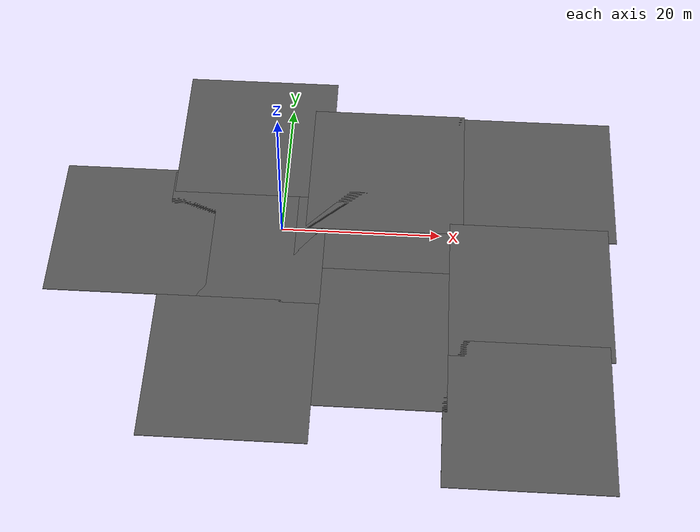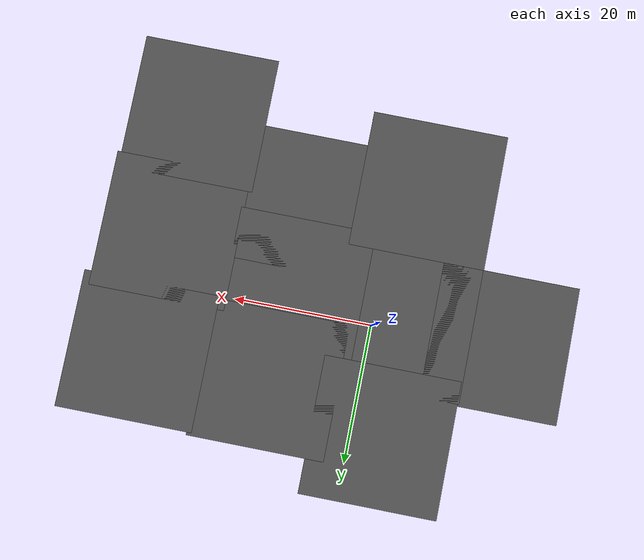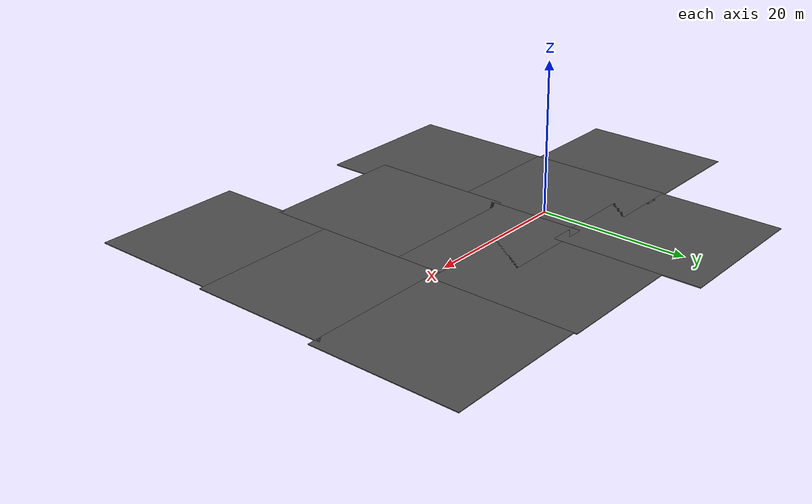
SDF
<sdf version="1.6">
 <world name="default">
  <light name="sun" type="directional">
   <pose>0 0 10 0 -0 0</pose>
   <diffuse>0.8 0.8 0.8 1</diffuse>
   <specular>0.2 0.2 0.2 1</specular>
   <attenuation>
    <range>1000</range>
    <constant>0.9</constant>
    <linear>0.01</linear>
    <quadratic>0.001</quadratic>
   </attenuation>
   <direction>-0.5 0.1 -0.9</direction>
  </light>
  <gravity>0 0 -9.8</gravity>
  <magnetic_field>6e-06 2.3e-05 -4.2e-05</magnetic_field>
  <atmosphere type="adiabatic"/>
  <physics name="default_physics" default="0" type="ode">
   <max_step_size>0.001</max_step_size>
   <real_time_factor>1</real_time_factor>
   <real_time_update_rate>1000</real_time_update_rate>
  </physics>
  <scene><ambient>0.4 0.4 0.4 1</ambient><background>0.7 0.7 0.7 1</background><shadows>1</shadows></scene>
  <spherical_coordinates>
   <surface_model>EARTH_WGS84</surface_model>
   <latitude_deg>0</latitude_deg>
   <longitude_deg>0</longitude_deg>
   <elevation>0</elevation>
   <heading_deg>0</heading_deg>
  </spherical_coordinates>
  <model name="asphalt_plane">
   <static>1</static>
   <link name="link">
    <collision name="collision"><geometry><box><size>20 20 0.1</size></box></geometry></collision>
    <visual name="visual">
     <cast_shadows>0</cast_shadows>
     <geometry><box><size>20 20 0.1</size></box></geometry>
     <material>
      <script>
       <uri>model://asphalt_plane/materials/scripts</uri>
       <uri>model://asphalt_plane/materials/textures</uri>
       <name>vrc/asphalt</name>
      </script>
     </material>
    </visual>
   </link>
   <pose>-4.64285 -21.04 0 0 -0 0</pose>
  </model>
  <model name="asphalt_plane_clone">
   <static>1</static>
   <link name="link">
    <collision name="collision"><geometry><box><size>20 20 0.1</size></box></geometry></collision>
    <visual name="visual">
     <cast_shadows>0</cast_shadows>
     <geometry><box><size>20 20 0.1</size></box></geometry>
     <material>
      <script>
       <uri>model://asphalt_plane/materials/scripts</uri>
       <uri>model://asphalt_plane/materials/textures</uri>
       <name>vrc/asphalt</name>
      </script>
     </material>
    </visual>
   </link>
   <pose>-4.56138 -1.36583 0 0 -0 0</pose>
  </model>
  <model name="asphalt_plane_clone_0">
   <static>1</static>
   <link name="link">
    <collision name="collision"><geometry><box><size>20 20 0.1</size></box></geometry></collision>
    <visual name="visual">
     <cast_shadows>0</cast_shadows>
     <geometry><box><size>20 20 0.1</size></box></geometry>
     <material>
      <script>
       <uri>model://asphalt_plane/materials/scripts</uri>
       <uri>model://asphalt_plane/materials/textures</uri>
       <name>vrc/asphalt</name>
      </script>
     </material>
    </visual>
   </link>
   <pose>-4.35704 15.385 0 0 -0 0</pose>
  </model>
  <model name="asphalt_plane_clone_1">
   <static>1</static>
   <link name="link">
    <collision name="collision"><geometry><box><size>20 20 0.1</size></box></geometry></collision>
    <visual name="visual">
     <cast_shadows>0</cast_shadows>
     <geometry><box><size>20 20 0.1</size></box></geometry>
     <material>
      <script>
       <uri>model://asphalt_plane/materials/scripts</uri>
       <uri>model://asphalt_plane/materials/textures</uri>
       <name>vrc/asphalt</name>
      </script>
     </material>
    </visual>
   </link>
   <pose>12.919 10.3967 0 0 -0 0</pose>
  </model>
  <model name="asphalt_plane_clone_2">
   <static>1</static>
   <link name="link">
    <collision name="collision"><geometry><box><size>20 20 0.1</size></box></geometry></collision>
    <visual name="visual">
     <cast_shadows>0</cast_shadows>
     <geometry><box><size>20 20 0.1</size></box></geometry>
     <material>
      <script>
       <uri>model://asphalt_plane/materials/scripts</uri>
       <uri>model://asphalt_plane/materials/textures</uri>
       <name>vrc/asphalt</name>
      </script>
     </material>
    </visual>
   </link>
   <pose>11.7465 -3.39792 0 0 -0 0</pose>
  </model>
  <model name="asphalt_plane_clone_3">
   <static>1</static>
   <link name="link">
    <collision name="collision"><geometry><box><size>20 20 0.1</size></box></geometry></collision>
    <visual name="visual">
     <cast_shadows>0</cast_shadows>
     <geometry><box><size>20 20 0.1</size></box></geometry>
     <material>
      <script>
       <uri>model://asphalt_plane/materials/scripts</uri>
       <uri>model://asphalt_plane/materials/textures</uri>
       <name>vrc/asphalt</name>
      </script>
     </material>
    </visual>
   </link>
   <pose>11.2537 -15.8872 0 0 -0 0</pose>
  </model>
  <model name="asphalt_plane_clone_clone">
   <static>1</static>
   <link name="link">
    <collision name="collision"><geometry><box><size>20 20 0.1</size></box></geometry></collision>
    <visual name="visual">
     <cast_shadows>0</cast_shadows>
     <geometry><box><size>20 20 0.1</size></box></geometry>
     <material>
      <script>
       <uri>model://asphalt_plane/materials/scripts</uri>
       <uri>model://asphalt_plane/materials/textures</uri>
       <name>vrc/asphalt</name>
      </script>
     </material>
    </visual>
   </link>
   <pose>31.226 -8.00237 0 0 -0 0</pose>
  </model>
  <model name="asphalt_plane_clone_clone_0">
   <static>1</static>
   <link name="link">
    <collision name="collision"><geometry><box><size>20 20 0.1</size></box></geometry></collision>
    <visual name="visual">
     <cast_shadows>0</cast_shadows>
     <geometry><box><size>20 20 0.1</size></box></geometry>
     <material>
      <script>
       <uri>model://asphalt_plane/materials/scripts</uri>
       <uri>model://asphalt_plane/materials/textures</uri>
       <name>vrc/asphalt</name>
      </script>
     </material>
    </visual>
   </link>
   <pose>30.6756 -25.7849 0 0 -0 0</pose>
  </model>
  <model name="asphalt_plane_clone_clone_1">
   <static>1</static>
   <link name="link">
    <collision name="collision"><geometry><box><size>20 20 0.1</size></box></geometry></collision>
    <visual name="visual">
     <cast_shadows>0</cast_shadows>
     <geometry><box><size>20 20 0.1</size></box></geometry>
     <material>
      <script>
       <uri>model://asphalt_plane/materials/scripts</uri>
       <uri>model://asphalt_plane/materials/textures</uri>
       <name>vrc/asphalt</name>
      </script>
     </material>
    </visual>
   </link>
   <pose>32.2225 10.0057 0 0 -0 0</pose>
  </model>
  <model name="asphalt_plane_clone_clone_2">
   <static>1</static>
   <link name="link">
    <collision name="collision"><geometry><box><size>20 20 0.1</size></box></geometry></collision>
    <visual name="visual">
     <cast_shadows>0</cast_shadows>
     <geometry><box><size>20 20 0.1</size></box></geometry>
     <material>
      <script>
       <uri>model://asphalt_plane/materials/scripts</uri>
       <uri>model://asphalt_plane/materials/textures</uri>
       <name>vrc/asphalt</name>
      </script>
     </material>
    </visual>
   </link>
   <pose>-18.7535 -1.06566 0 0 -0 0</pose>
  </model>
 </world>
</sdf>
